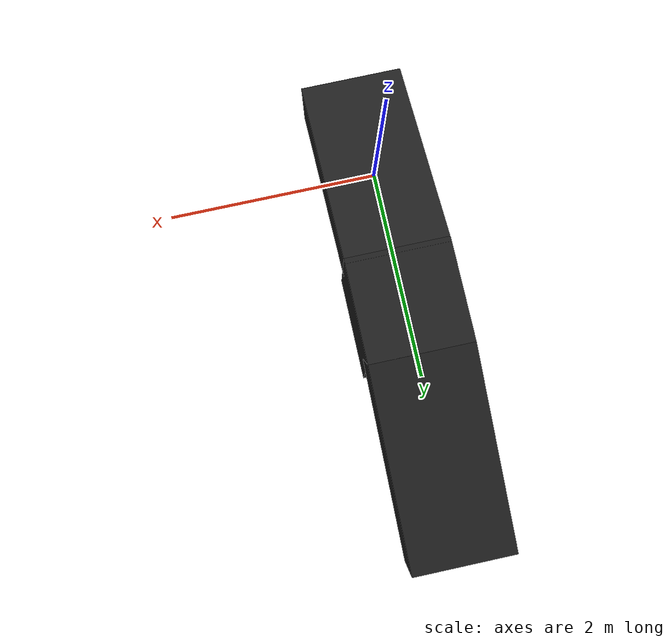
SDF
<?xml version="1.0"?>
<sdf version="1.4">
  <model name="ramp_10">
    <static>true</static>
    <pose>0 0 0 0 0 0</pose>
    <link name="link">
      <collision name="up_collision">
        <pose>0 0 0 0.261799388 0 0</pose>
        <geometry>
          <box>
            <size>1 2 0.5</size>
          </box>
        </geometry>
      </collision>

        <visual name='up_visual'>
         <pose>0 0 0 0.261799388 0 0 </pose>
          <geometry>
            <box>
              <size>1 2 0.5</size>
            </box>
          </geometry>
          <material>
            <script>
              <uri>file://media/materials/scripts/gazebo.material</uri>
              <name>Gazebo/FlatBlack</name>
            </script>
          </material>
        </visual>

      <collision name="mid_collision">
        <pose>0 1.35 0 0 0 0</pose>
        <geometry>
          <box>
            <size>1 1 1</size>
          </box>
        </geometry>
      </collision>

        <visual name='mid_visual'>
         <pose>0 1.35 0 0 0 0 </pose>
          <geometry>
            <box>
              <size>1 1 1</size>
            </box>
          </geometry>
          <material>
            <script>
              <uri>file://media/materials/scripts/gazebo.material</uri>
              <name>Gazebo/FlatBlack</name>
            </script>
          </material>
        </visual>

      <collision name="down_collision">
        <pose>0 2.75 -0 -0.261799388 0 0</pose>
        <geometry>
          <box>
            <size>1 2 0.5</size>
          </box>
        </geometry>
      </collision>

        <visual name='down_visual'>
         <pose>0 2.75 0 -0.261799388 0 0 </pose>
          <geometry>
            <box>
              <size>1 2 0.5</size>
            </box>
          </geometry>
        <material>
            <script>
              <uri>file://media/materials/scripts/gazebo.material</uri>
              <name>Gazebo/FlatBlack</name>
            </script>
          </material>
        </visual>

    </link>
  </model>
</sdf>
